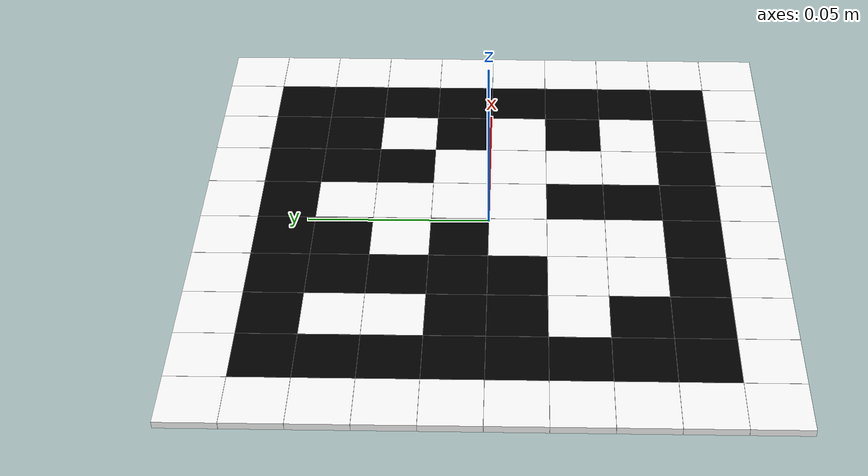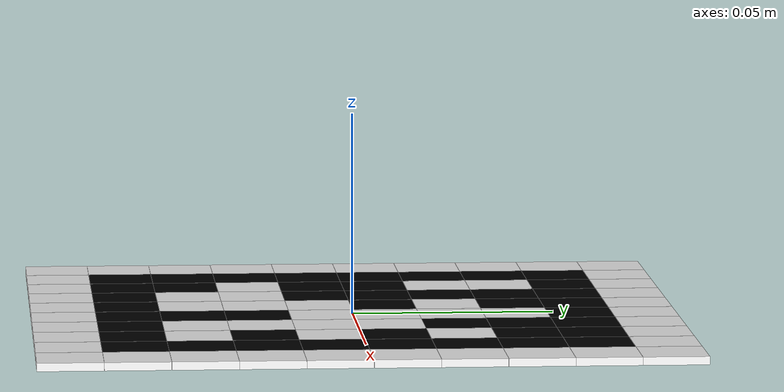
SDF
<?xml version="1.0"?>
<sdf version="1.8">
  <model name="apriltag_36h11_01">
    <static>true</static>
    <link name="link">
      <visual name="c0000">
        <pose>-0.072000 0.072000 0 0 0 0</pose>
        <geometry><box><size>0.015950 0.015950 0.002</size></box></geometry>
        <material>
          <ambient>1 1 1 1</ambient>
          <diffuse>1 1 1 1</diffuse>
          <specular>0 0 0 1</specular>
        </material>
      </visual>
      <visual name="c0001">
        <pose>-0.056000 0.072000 0 0 0 0</pose>
        <geometry><box><size>0.015950 0.015950 0.002</size></box></geometry>
        <material>
          <ambient>1 1 1 1</ambient>
          <diffuse>1 1 1 1</diffuse>
          <specular>0 0 0 1</specular>
        </material>
      </visual>
      <visual name="c0002">
        <pose>-0.040000 0.072000 0 0 0 0</pose>
        <geometry><box><size>0.015950 0.015950 0.002</size></box></geometry>
        <material>
          <ambient>1 1 1 1</ambient>
          <diffuse>1 1 1 1</diffuse>
          <specular>0 0 0 1</specular>
        </material>
      </visual>
      <visual name="c0003">
        <pose>-0.024000 0.072000 0 0 0 0</pose>
        <geometry><box><size>0.015950 0.015950 0.002</size></box></geometry>
        <material>
          <ambient>1 1 1 1</ambient>
          <diffuse>1 1 1 1</diffuse>
          <specular>0 0 0 1</specular>
        </material>
      </visual>
      <visual name="c0004">
        <pose>-0.008000 0.072000 0 0 0 0</pose>
        <geometry><box><size>0.015950 0.015950 0.002</size></box></geometry>
        <material>
          <ambient>1 1 1 1</ambient>
          <diffuse>1 1 1 1</diffuse>
          <specular>0 0 0 1</specular>
        </material>
      </visual>
      <visual name="c0005">
        <pose>0.008000 0.072000 0 0 0 0</pose>
        <geometry><box><size>0.015950 0.015950 0.002</size></box></geometry>
        <material>
          <ambient>1 1 1 1</ambient>
          <diffuse>1 1 1 1</diffuse>
          <specular>0 0 0 1</specular>
        </material>
      </visual>
      <visual name="c0006">
        <pose>0.024000 0.072000 0 0 0 0</pose>
        <geometry><box><size>0.015950 0.015950 0.002</size></box></geometry>
        <material>
          <ambient>1 1 1 1</ambient>
          <diffuse>1 1 1 1</diffuse>
          <specular>0 0 0 1</specular>
        </material>
      </visual>
      <visual name="c0007">
        <pose>0.040000 0.072000 0 0 0 0</pose>
        <geometry><box><size>0.015950 0.015950 0.002</size></box></geometry>
        <material>
          <ambient>1 1 1 1</ambient>
          <diffuse>1 1 1 1</diffuse>
          <specular>0 0 0 1</specular>
        </material>
      </visual>
      <visual name="c0008">
        <pose>0.056000 0.072000 0 0 0 0</pose>
        <geometry><box><size>0.015950 0.015950 0.002</size></box></geometry>
        <material>
          <ambient>1 1 1 1</ambient>
          <diffuse>1 1 1 1</diffuse>
          <specular>0 0 0 1</specular>
        </material>
      </visual>
      <visual name="c0009">
        <pose>0.072000 0.072000 0 0 0 0</pose>
        <geometry><box><size>0.015950 0.015950 0.002</size></box></geometry>
        <material>
          <ambient>1 1 1 1</ambient>
          <diffuse>1 1 1 1</diffuse>
          <specular>0 0 0 1</specular>
        </material>
      </visual>
      <visual name="c0100">
        <pose>-0.072000 0.056000 0 0 0 0</pose>
        <geometry><box><size>0.015950 0.015950 0.002</size></box></geometry>
        <material>
          <ambient>1 1 1 1</ambient>
          <diffuse>1 1 1 1</diffuse>
          <specular>0 0 0 1</specular>
        </material>
      </visual>
      <visual name="c0101">
        <pose>-0.056000 0.056000 0 0 0 0</pose>
        <geometry><box><size>0.015950 0.015950 0.002</size></box></geometry>
        <material>
          <ambient>0 0 0 1</ambient>
          <diffuse>0 0 0 1</diffuse>
          <specular>0 0 0 1</specular>
        </material>
      </visual>
      <visual name="c0102">
        <pose>-0.040000 0.056000 0 0 0 0</pose>
        <geometry><box><size>0.015950 0.015950 0.002</size></box></geometry>
        <material>
          <ambient>0 0 0 1</ambient>
          <diffuse>0 0 0 1</diffuse>
          <specular>0 0 0 1</specular>
        </material>
      </visual>
      <visual name="c0103">
        <pose>-0.024000 0.056000 0 0 0 0</pose>
        <geometry><box><size>0.015950 0.015950 0.002</size></box></geometry>
        <material>
          <ambient>0 0 0 1</ambient>
          <diffuse>0 0 0 1</diffuse>
          <specular>0 0 0 1</specular>
        </material>
      </visual>
      <visual name="c0104">
        <pose>-0.008000 0.056000 0 0 0 0</pose>
        <geometry><box><size>0.015950 0.015950 0.002</size></box></geometry>
        <material>
          <ambient>0 0 0 1</ambient>
          <diffuse>0 0 0 1</diffuse>
          <specular>0 0 0 1</specular>
        </material>
      </visual>
      <visual name="c0105">
        <pose>0.008000 0.056000 0 0 0 0</pose>
        <geometry><box><size>0.015950 0.015950 0.002</size></box></geometry>
        <material>
          <ambient>0 0 0 1</ambient>
          <diffuse>0 0 0 1</diffuse>
          <specular>0 0 0 1</specular>
        </material>
      </visual>
      <visual name="c0106">
        <pose>0.024000 0.056000 0 0 0 0</pose>
        <geometry><box><size>0.015950 0.015950 0.002</size></box></geometry>
        <material>
          <ambient>0 0 0 1</ambient>
          <diffuse>0 0 0 1</diffuse>
          <specular>0 0 0 1</specular>
        </material>
      </visual>
      <visual name="c0107">
        <pose>0.040000 0.056000 0 0 0 0</pose>
        <geometry><box><size>0.015950 0.015950 0.002</size></box></geometry>
        <material>
          <ambient>0 0 0 1</ambient>
          <diffuse>0 0 0 1</diffuse>
          <specular>0 0 0 1</specular>
        </material>
      </visual>
      <visual name="c0108">
        <pose>0.056000 0.056000 0 0 0 0</pose>
        <geometry><box><size>0.015950 0.015950 0.002</size></box></geometry>
        <material>
          <ambient>0 0 0 1</ambient>
          <diffuse>0 0 0 1</diffuse>
          <specular>0 0 0 1</specular>
        </material>
      </visual>
      <visual name="c0109">
        <pose>0.072000 0.056000 0 0 0 0</pose>
        <geometry><box><size>0.015950 0.015950 0.002</size></box></geometry>
        <material>
          <ambient>1 1 1 1</ambient>
          <diffuse>1 1 1 1</diffuse>
          <specular>0 0 0 1</specular>
        </material>
      </visual>
      <visual name="c0200">
        <pose>-0.072000 0.040000 0 0 0 0</pose>
        <geometry><box><size>0.015950 0.015950 0.002</size></box></geometry>
        <material>
          <ambient>1 1 1 1</ambient>
          <diffuse>1 1 1 1</diffuse>
          <specular>0 0 0 1</specular>
        </material>
      </visual>
      <visual name="c0201">
        <pose>-0.056000 0.040000 0 0 0 0</pose>
        <geometry><box><size>0.015950 0.015950 0.002</size></box></geometry>
        <material>
          <ambient>0 0 0 1</ambient>
          <diffuse>0 0 0 1</diffuse>
          <specular>0 0 0 1</specular>
        </material>
      </visual>
      <visual name="c0202">
        <pose>-0.040000 0.040000 0 0 0 0</pose>
        <geometry><box><size>0.015950 0.015950 0.002</size></box></geometry>
        <material>
          <ambient>1 1 1 1</ambient>
          <diffuse>1 1 1 1</diffuse>
          <specular>0 0 0 1</specular>
        </material>
      </visual>
      <visual name="c0203">
        <pose>-0.024000 0.040000 0 0 0 0</pose>
        <geometry><box><size>0.015950 0.015950 0.002</size></box></geometry>
        <material>
          <ambient>0 0 0 1</ambient>
          <diffuse>0 0 0 1</diffuse>
          <specular>0 0 0 1</specular>
        </material>
      </visual>
      <visual name="c0204">
        <pose>-0.008000 0.040000 0 0 0 0</pose>
        <geometry><box><size>0.015950 0.015950 0.002</size></box></geometry>
        <material>
          <ambient>0 0 0 1</ambient>
          <diffuse>0 0 0 1</diffuse>
          <specular>0 0 0 1</specular>
        </material>
      </visual>
      <visual name="c0205">
        <pose>0.008000 0.040000 0 0 0 0</pose>
        <geometry><box><size>0.015950 0.015950 0.002</size></box></geometry>
        <material>
          <ambient>1 1 1 1</ambient>
          <diffuse>1 1 1 1</diffuse>
          <specular>0 0 0 1</specular>
        </material>
      </visual>
      <visual name="c0206">
        <pose>0.024000 0.040000 0 0 0 0</pose>
        <geometry><box><size>0.015950 0.015950 0.002</size></box></geometry>
        <material>
          <ambient>0 0 0 1</ambient>
          <diffuse>0 0 0 1</diffuse>
          <specular>0 0 0 1</specular>
        </material>
      </visual>
      <visual name="c0207">
        <pose>0.040000 0.040000 0 0 0 0</pose>
        <geometry><box><size>0.015950 0.015950 0.002</size></box></geometry>
        <material>
          <ambient>0 0 0 1</ambient>
          <diffuse>0 0 0 1</diffuse>
          <specular>0 0 0 1</specular>
        </material>
      </visual>
      <visual name="c0208">
        <pose>0.056000 0.040000 0 0 0 0</pose>
        <geometry><box><size>0.015950 0.015950 0.002</size></box></geometry>
        <material>
          <ambient>0 0 0 1</ambient>
          <diffuse>0 0 0 1</diffuse>
          <specular>0 0 0 1</specular>
        </material>
      </visual>
      <visual name="c0209">
        <pose>0.072000 0.040000 0 0 0 0</pose>
        <geometry><box><size>0.015950 0.015950 0.002</size></box></geometry>
        <material>
          <ambient>1 1 1 1</ambient>
          <diffuse>1 1 1 1</diffuse>
          <specular>0 0 0 1</specular>
        </material>
      </visual>
      <visual name="c0300">
        <pose>-0.072000 0.024000 0 0 0 0</pose>
        <geometry><box><size>0.015950 0.015950 0.002</size></box></geometry>
        <material>
          <ambient>1 1 1 1</ambient>
          <diffuse>1 1 1 1</diffuse>
          <specular>0 0 0 1</specular>
        </material>
      </visual>
      <visual name="c0301">
        <pose>-0.056000 0.024000 0 0 0 0</pose>
        <geometry><box><size>0.015950 0.015950 0.002</size></box></geometry>
        <material>
          <ambient>0 0 0 1</ambient>
          <diffuse>0 0 0 1</diffuse>
          <specular>0 0 0 1</specular>
        </material>
      </visual>
      <visual name="c0302">
        <pose>-0.040000 0.024000 0 0 0 0</pose>
        <geometry><box><size>0.015950 0.015950 0.002</size></box></geometry>
        <material>
          <ambient>1 1 1 1</ambient>
          <diffuse>1 1 1 1</diffuse>
          <specular>0 0 0 1</specular>
        </material>
      </visual>
      <visual name="c0303">
        <pose>-0.024000 0.024000 0 0 0 0</pose>
        <geometry><box><size>0.015950 0.015950 0.002</size></box></geometry>
        <material>
          <ambient>0 0 0 1</ambient>
          <diffuse>0 0 0 1</diffuse>
          <specular>0 0 0 1</specular>
        </material>
      </visual>
      <visual name="c0304">
        <pose>-0.008000 0.024000 0 0 0 0</pose>
        <geometry><box><size>0.015950 0.015950 0.002</size></box></geometry>
        <material>
          <ambient>1 1 1 1</ambient>
          <diffuse>1 1 1 1</diffuse>
          <specular>0 0 0 1</specular>
        </material>
      </visual>
      <visual name="c0305">
        <pose>0.008000 0.024000 0 0 0 0</pose>
        <geometry><box><size>0.015950 0.015950 0.002</size></box></geometry>
        <material>
          <ambient>1 1 1 1</ambient>
          <diffuse>1 1 1 1</diffuse>
          <specular>0 0 0 1</specular>
        </material>
      </visual>
      <visual name="c0306">
        <pose>0.024000 0.024000 0 0 0 0</pose>
        <geometry><box><size>0.015950 0.015950 0.002</size></box></geometry>
        <material>
          <ambient>0 0 0 1</ambient>
          <diffuse>0 0 0 1</diffuse>
          <specular>0 0 0 1</specular>
        </material>
      </visual>
      <visual name="c0307">
        <pose>0.040000 0.024000 0 0 0 0</pose>
        <geometry><box><size>0.015950 0.015950 0.002</size></box></geometry>
        <material>
          <ambient>1 1 1 1</ambient>
          <diffuse>1 1 1 1</diffuse>
          <specular>0 0 0 1</specular>
        </material>
      </visual>
      <visual name="c0308">
        <pose>0.056000 0.024000 0 0 0 0</pose>
        <geometry><box><size>0.015950 0.015950 0.002</size></box></geometry>
        <material>
          <ambient>0 0 0 1</ambient>
          <diffuse>0 0 0 1</diffuse>
          <specular>0 0 0 1</specular>
        </material>
      </visual>
      <visual name="c0309">
        <pose>0.072000 0.024000 0 0 0 0</pose>
        <geometry><box><size>0.015950 0.015950 0.002</size></box></geometry>
        <material>
          <ambient>1 1 1 1</ambient>
          <diffuse>1 1 1 1</diffuse>
          <specular>0 0 0 1</specular>
        </material>
      </visual>
      <visual name="c0400">
        <pose>-0.072000 0.008000 0 0 0 0</pose>
        <geometry><box><size>0.015950 0.015950 0.002</size></box></geometry>
        <material>
          <ambient>1 1 1 1</ambient>
          <diffuse>1 1 1 1</diffuse>
          <specular>0 0 0 1</specular>
        </material>
      </visual>
      <visual name="c0401">
        <pose>-0.056000 0.008000 0 0 0 0</pose>
        <geometry><box><size>0.015950 0.015950 0.002</size></box></geometry>
        <material>
          <ambient>0 0 0 1</ambient>
          <diffuse>0 0 0 1</diffuse>
          <specular>0 0 0 1</specular>
        </material>
      </visual>
      <visual name="c0402">
        <pose>-0.040000 0.008000 0 0 0 0</pose>
        <geometry><box><size>0.015950 0.015950 0.002</size></box></geometry>
        <material>
          <ambient>0 0 0 1</ambient>
          <diffuse>0 0 0 1</diffuse>
          <specular>0 0 0 1</specular>
        </material>
      </visual>
      <visual name="c0403">
        <pose>-0.024000 0.008000 0 0 0 0</pose>
        <geometry><box><size>0.015950 0.015950 0.002</size></box></geometry>
        <material>
          <ambient>0 0 0 1</ambient>
          <diffuse>0 0 0 1</diffuse>
          <specular>0 0 0 1</specular>
        </material>
      </visual>
      <visual name="c0404">
        <pose>-0.008000 0.008000 0 0 0 0</pose>
        <geometry><box><size>0.015950 0.015950 0.002</size></box></geometry>
        <material>
          <ambient>0 0 0 1</ambient>
          <diffuse>0 0 0 1</diffuse>
          <specular>0 0 0 1</specular>
        </material>
      </visual>
      <visual name="c0405">
        <pose>0.008000 0.008000 0 0 0 0</pose>
        <geometry><box><size>0.015950 0.015950 0.002</size></box></geometry>
        <material>
          <ambient>1 1 1 1</ambient>
          <diffuse>1 1 1 1</diffuse>
          <specular>0 0 0 1</specular>
        </material>
      </visual>
      <visual name="c0406">
        <pose>0.024000 0.008000 0 0 0 0</pose>
        <geometry><box><size>0.015950 0.015950 0.002</size></box></geometry>
        <material>
          <ambient>1 1 1 1</ambient>
          <diffuse>1 1 1 1</diffuse>
          <specular>0 0 0 1</specular>
        </material>
      </visual>
      <visual name="c0407">
        <pose>0.040000 0.008000 0 0 0 0</pose>
        <geometry><box><size>0.015950 0.015950 0.002</size></box></geometry>
        <material>
          <ambient>0 0 0 1</ambient>
          <diffuse>0 0 0 1</diffuse>
          <specular>0 0 0 1</specular>
        </material>
      </visual>
      <visual name="c0408">
        <pose>0.056000 0.008000 0 0 0 0</pose>
        <geometry><box><size>0.015950 0.015950 0.002</size></box></geometry>
        <material>
          <ambient>0 0 0 1</ambient>
          <diffuse>0 0 0 1</diffuse>
          <specular>0 0 0 1</specular>
        </material>
      </visual>
      <visual name="c0409">
        <pose>0.072000 0.008000 0 0 0 0</pose>
        <geometry><box><size>0.015950 0.015950 0.002</size></box></geometry>
        <material>
          <ambient>1 1 1 1</ambient>
          <diffuse>1 1 1 1</diffuse>
          <specular>0 0 0 1</specular>
        </material>
      </visual>
      <visual name="c0500">
        <pose>-0.072000 -0.008000 0 0 0 0</pose>
        <geometry><box><size>0.015950 0.015950 0.002</size></box></geometry>
        <material>
          <ambient>1 1 1 1</ambient>
          <diffuse>1 1 1 1</diffuse>
          <specular>0 0 0 1</specular>
        </material>
      </visual>
      <visual name="c0501">
        <pose>-0.056000 -0.008000 0 0 0 0</pose>
        <geometry><box><size>0.015950 0.015950 0.002</size></box></geometry>
        <material>
          <ambient>0 0 0 1</ambient>
          <diffuse>0 0 0 1</diffuse>
          <specular>0 0 0 1</specular>
        </material>
      </visual>
      <visual name="c0502">
        <pose>-0.040000 -0.008000 0 0 0 0</pose>
        <geometry><box><size>0.015950 0.015950 0.002</size></box></geometry>
        <material>
          <ambient>0 0 0 1</ambient>
          <diffuse>0 0 0 1</diffuse>
          <specular>0 0 0 1</specular>
        </material>
      </visual>
      <visual name="c0503">
        <pose>-0.024000 -0.008000 0 0 0 0</pose>
        <geometry><box><size>0.015950 0.015950 0.002</size></box></geometry>
        <material>
          <ambient>0 0 0 1</ambient>
          <diffuse>0 0 0 1</diffuse>
          <specular>0 0 0 1</specular>
        </material>
      </visual>
      <visual name="c0504">
        <pose>-0.008000 -0.008000 0 0 0 0</pose>
        <geometry><box><size>0.015950 0.015950 0.002</size></box></geometry>
        <material>
          <ambient>1 1 1 1</ambient>
          <diffuse>1 1 1 1</diffuse>
          <specular>0 0 0 1</specular>
        </material>
      </visual>
      <visual name="c0505">
        <pose>0.008000 -0.008000 0 0 0 0</pose>
        <geometry><box><size>0.015950 0.015950 0.002</size></box></geometry>
        <material>
          <ambient>1 1 1 1</ambient>
          <diffuse>1 1 1 1</diffuse>
          <specular>0 0 0 1</specular>
        </material>
      </visual>
      <visual name="c0506">
        <pose>0.024000 -0.008000 0 0 0 0</pose>
        <geometry><box><size>0.015950 0.015950 0.002</size></box></geometry>
        <material>
          <ambient>1 1 1 1</ambient>
          <diffuse>1 1 1 1</diffuse>
          <specular>0 0 0 1</specular>
        </material>
      </visual>
      <visual name="c0507">
        <pose>0.040000 -0.008000 0 0 0 0</pose>
        <geometry><box><size>0.015950 0.015950 0.002</size></box></geometry>
        <material>
          <ambient>1 1 1 1</ambient>
          <diffuse>1 1 1 1</diffuse>
          <specular>0 0 0 1</specular>
        </material>
      </visual>
      <visual name="c0508">
        <pose>0.056000 -0.008000 0 0 0 0</pose>
        <geometry><box><size>0.015950 0.015950 0.002</size></box></geometry>
        <material>
          <ambient>0 0 0 1</ambient>
          <diffuse>0 0 0 1</diffuse>
          <specular>0 0 0 1</specular>
        </material>
      </visual>
      <visual name="c0509">
        <pose>0.072000 -0.008000 0 0 0 0</pose>
        <geometry><box><size>0.015950 0.015950 0.002</size></box></geometry>
        <material>
          <ambient>1 1 1 1</ambient>
          <diffuse>1 1 1 1</diffuse>
          <specular>0 0 0 1</specular>
        </material>
      </visual>
      <visual name="c0600">
        <pose>-0.072000 -0.024000 0 0 0 0</pose>
        <geometry><box><size>0.015950 0.015950 0.002</size></box></geometry>
        <material>
          <ambient>1 1 1 1</ambient>
          <diffuse>1 1 1 1</diffuse>
          <specular>0 0 0 1</specular>
        </material>
      </visual>
      <visual name="c0601">
        <pose>-0.056000 -0.024000 0 0 0 0</pose>
        <geometry><box><size>0.015950 0.015950 0.002</size></box></geometry>
        <material>
          <ambient>0 0 0 1</ambient>
          <diffuse>0 0 0 1</diffuse>
          <specular>0 0 0 1</specular>
        </material>
      </visual>
      <visual name="c0602">
        <pose>-0.040000 -0.024000 0 0 0 0</pose>
        <geometry><box><size>0.015950 0.015950 0.002</size></box></geometry>
        <material>
          <ambient>1 1 1 1</ambient>
          <diffuse>1 1 1 1</diffuse>
          <specular>0 0 0 1</specular>
        </material>
      </visual>
      <visual name="c0603">
        <pose>-0.024000 -0.024000 0 0 0 0</pose>
        <geometry><box><size>0.015950 0.015950 0.002</size></box></geometry>
        <material>
          <ambient>1 1 1 1</ambient>
          <diffuse>1 1 1 1</diffuse>
          <specular>0 0 0 1</specular>
        </material>
      </visual>
      <visual name="c0604">
        <pose>-0.008000 -0.024000 0 0 0 0</pose>
        <geometry><box><size>0.015950 0.015950 0.002</size></box></geometry>
        <material>
          <ambient>1 1 1 1</ambient>
          <diffuse>1 1 1 1</diffuse>
          <specular>0 0 0 1</specular>
        </material>
      </visual>
      <visual name="c0605">
        <pose>0.008000 -0.024000 0 0 0 0</pose>
        <geometry><box><size>0.015950 0.015950 0.002</size></box></geometry>
        <material>
          <ambient>0 0 0 1</ambient>
          <diffuse>0 0 0 1</diffuse>
          <specular>0 0 0 1</specular>
        </material>
      </visual>
      <visual name="c0606">
        <pose>0.024000 -0.024000 0 0 0 0</pose>
        <geometry><box><size>0.015950 0.015950 0.002</size></box></geometry>
        <material>
          <ambient>1 1 1 1</ambient>
          <diffuse>1 1 1 1</diffuse>
          <specular>0 0 0 1</specular>
        </material>
      </visual>
      <visual name="c0607">
        <pose>0.040000 -0.024000 0 0 0 0</pose>
        <geometry><box><size>0.015950 0.015950 0.002</size></box></geometry>
        <material>
          <ambient>0 0 0 1</ambient>
          <diffuse>0 0 0 1</diffuse>
          <specular>0 0 0 1</specular>
        </material>
      </visual>
      <visual name="c0608">
        <pose>0.056000 -0.024000 0 0 0 0</pose>
        <geometry><box><size>0.015950 0.015950 0.002</size></box></geometry>
        <material>
          <ambient>0 0 0 1</ambient>
          <diffuse>0 0 0 1</diffuse>
          <specular>0 0 0 1</specular>
        </material>
      </visual>
      <visual name="c0609">
        <pose>0.072000 -0.024000 0 0 0 0</pose>
        <geometry><box><size>0.015950 0.015950 0.002</size></box></geometry>
        <material>
          <ambient>1 1 1 1</ambient>
          <diffuse>1 1 1 1</diffuse>
          <specular>0 0 0 1</specular>
        </material>
      </visual>
      <visual name="c0700">
        <pose>-0.072000 -0.040000 0 0 0 0</pose>
        <geometry><box><size>0.015950 0.015950 0.002</size></box></geometry>
        <material>
          <ambient>1 1 1 1</ambient>
          <diffuse>1 1 1 1</diffuse>
          <specular>0 0 0 1</specular>
        </material>
      </visual>
      <visual name="c0701">
        <pose>-0.056000 -0.040000 0 0 0 0</pose>
        <geometry><box><size>0.015950 0.015950 0.002</size></box></geometry>
        <material>
          <ambient>0 0 0 1</ambient>
          <diffuse>0 0 0 1</diffuse>
          <specular>0 0 0 1</specular>
        </material>
      </visual>
      <visual name="c0702">
        <pose>-0.040000 -0.040000 0 0 0 0</pose>
        <geometry><box><size>0.015950 0.015950 0.002</size></box></geometry>
        <material>
          <ambient>0 0 0 1</ambient>
          <diffuse>0 0 0 1</diffuse>
          <specular>0 0 0 1</specular>
        </material>
      </visual>
      <visual name="c0703">
        <pose>-0.024000 -0.040000 0 0 0 0</pose>
        <geometry><box><size>0.015950 0.015950 0.002</size></box></geometry>
        <material>
          <ambient>1 1 1 1</ambient>
          <diffuse>1 1 1 1</diffuse>
          <specular>0 0 0 1</specular>
        </material>
      </visual>
      <visual name="c0704">
        <pose>-0.008000 -0.040000 0 0 0 0</pose>
        <geometry><box><size>0.015950 0.015950 0.002</size></box></geometry>
        <material>
          <ambient>1 1 1 1</ambient>
          <diffuse>1 1 1 1</diffuse>
          <specular>0 0 0 1</specular>
        </material>
      </visual>
      <visual name="c0705">
        <pose>0.008000 -0.040000 0 0 0 0</pose>
        <geometry><box><size>0.015950 0.015950 0.002</size></box></geometry>
        <material>
          <ambient>0 0 0 1</ambient>
          <diffuse>0 0 0 1</diffuse>
          <specular>0 0 0 1</specular>
        </material>
      </visual>
      <visual name="c0706">
        <pose>0.024000 -0.040000 0 0 0 0</pose>
        <geometry><box><size>0.015950 0.015950 0.002</size></box></geometry>
        <material>
          <ambient>1 1 1 1</ambient>
          <diffuse>1 1 1 1</diffuse>
          <specular>0 0 0 1</specular>
        </material>
      </visual>
      <visual name="c0707">
        <pose>0.040000 -0.040000 0 0 0 0</pose>
        <geometry><box><size>0.015950 0.015950 0.002</size></box></geometry>
        <material>
          <ambient>1 1 1 1</ambient>
          <diffuse>1 1 1 1</diffuse>
          <specular>0 0 0 1</specular>
        </material>
      </visual>
      <visual name="c0708">
        <pose>0.056000 -0.040000 0 0 0 0</pose>
        <geometry><box><size>0.015950 0.015950 0.002</size></box></geometry>
        <material>
          <ambient>0 0 0 1</ambient>
          <diffuse>0 0 0 1</diffuse>
          <specular>0 0 0 1</specular>
        </material>
      </visual>
      <visual name="c0709">
        <pose>0.072000 -0.040000 0 0 0 0</pose>
        <geometry><box><size>0.015950 0.015950 0.002</size></box></geometry>
        <material>
          <ambient>1 1 1 1</ambient>
          <diffuse>1 1 1 1</diffuse>
          <specular>0 0 0 1</specular>
        </material>
      </visual>
      <visual name="c0800">
        <pose>-0.072000 -0.056000 0 0 0 0</pose>
        <geometry><box><size>0.015950 0.015950 0.002</size></box></geometry>
        <material>
          <ambient>1 1 1 1</ambient>
          <diffuse>1 1 1 1</diffuse>
          <specular>0 0 0 1</specular>
        </material>
      </visual>
      <visual name="c0801">
        <pose>-0.056000 -0.056000 0 0 0 0</pose>
        <geometry><box><size>0.015950 0.015950 0.002</size></box></geometry>
        <material>
          <ambient>0 0 0 1</ambient>
          <diffuse>0 0 0 1</diffuse>
          <specular>0 0 0 1</specular>
        </material>
      </visual>
      <visual name="c0802">
        <pose>-0.040000 -0.056000 0 0 0 0</pose>
        <geometry><box><size>0.015950 0.015950 0.002</size></box></geometry>
        <material>
          <ambient>0 0 0 1</ambient>
          <diffuse>0 0 0 1</diffuse>
          <specular>0 0 0 1</specular>
        </material>
      </visual>
      <visual name="c0803">
        <pose>-0.024000 -0.056000 0 0 0 0</pose>
        <geometry><box><size>0.015950 0.015950 0.002</size></box></geometry>
        <material>
          <ambient>0 0 0 1</ambient>
          <diffuse>0 0 0 1</diffuse>
          <specular>0 0 0 1</specular>
        </material>
      </visual>
      <visual name="c0804">
        <pose>-0.008000 -0.056000 0 0 0 0</pose>
        <geometry><box><size>0.015950 0.015950 0.002</size></box></geometry>
        <material>
          <ambient>0 0 0 1</ambient>
          <diffuse>0 0 0 1</diffuse>
          <specular>0 0 0 1</specular>
        </material>
      </visual>
      <visual name="c0805">
        <pose>0.008000 -0.056000 0 0 0 0</pose>
        <geometry><box><size>0.015950 0.015950 0.002</size></box></geometry>
        <material>
          <ambient>0 0 0 1</ambient>
          <diffuse>0 0 0 1</diffuse>
          <specular>0 0 0 1</specular>
        </material>
      </visual>
      <visual name="c0806">
        <pose>0.024000 -0.056000 0 0 0 0</pose>
        <geometry><box><size>0.015950 0.015950 0.002</size></box></geometry>
        <material>
          <ambient>0 0 0 1</ambient>
          <diffuse>0 0 0 1</diffuse>
          <specular>0 0 0 1</specular>
        </material>
      </visual>
      <visual name="c0807">
        <pose>0.040000 -0.056000 0 0 0 0</pose>
        <geometry><box><size>0.015950 0.015950 0.002</size></box></geometry>
        <material>
          <ambient>0 0 0 1</ambient>
          <diffuse>0 0 0 1</diffuse>
          <specular>0 0 0 1</specular>
        </material>
      </visual>
      <visual name="c0808">
        <pose>0.056000 -0.056000 0 0 0 0</pose>
        <geometry><box><size>0.015950 0.015950 0.002</size></box></geometry>
        <material>
          <ambient>0 0 0 1</ambient>
          <diffuse>0 0 0 1</diffuse>
          <specular>0 0 0 1</specular>
        </material>
      </visual>
      <visual name="c0809">
        <pose>0.072000 -0.056000 0 0 0 0</pose>
        <geometry><box><size>0.015950 0.015950 0.002</size></box></geometry>
        <material>
          <ambient>1 1 1 1</ambient>
          <diffuse>1 1 1 1</diffuse>
          <specular>0 0 0 1</specular>
        </material>
      </visual>
      <visual name="c0900">
        <pose>-0.072000 -0.072000 0 0 0 0</pose>
        <geometry><box><size>0.015950 0.015950 0.002</size></box></geometry>
        <material>
          <ambient>1 1 1 1</ambient>
          <diffuse>1 1 1 1</diffuse>
          <specular>0 0 0 1</specular>
        </material>
      </visual>
      <visual name="c0901">
        <pose>-0.056000 -0.072000 0 0 0 0</pose>
        <geometry><box><size>0.015950 0.015950 0.002</size></box></geometry>
        <material>
          <ambient>1 1 1 1</ambient>
          <diffuse>1 1 1 1</diffuse>
          <specular>0 0 0 1</specular>
        </material>
      </visual>
      <visual name="c0902">
        <pose>-0.040000 -0.072000 0 0 0 0</pose>
        <geometry><box><size>0.015950 0.015950 0.002</size></box></geometry>
        <material>
          <ambient>1 1 1 1</ambient>
          <diffuse>1 1 1 1</diffuse>
          <specular>0 0 0 1</specular>
        </material>
      </visual>
      <visual name="c0903">
        <pose>-0.024000 -0.072000 0 0 0 0</pose>
        <geometry><box><size>0.015950 0.015950 0.002</size></box></geometry>
        <material>
          <ambient>1 1 1 1</ambient>
          <diffuse>1 1 1 1</diffuse>
          <specular>0 0 0 1</specular>
        </material>
      </visual>
      <visual name="c0904">
        <pose>-0.008000 -0.072000 0 0 0 0</pose>
        <geometry><box><size>0.015950 0.015950 0.002</size></box></geometry>
        <material>
          <ambient>1 1 1 1</ambient>
          <diffuse>1 1 1 1</diffuse>
          <specular>0 0 0 1</specular>
        </material>
      </visual>
      <visual name="c0905">
        <pose>0.008000 -0.072000 0 0 0 0</pose>
        <geometry><box><size>0.015950 0.015950 0.002</size></box></geometry>
        <material>
          <ambient>1 1 1 1</ambient>
          <diffuse>1 1 1 1</diffuse>
          <specular>0 0 0 1</specular>
        </material>
      </visual>
      <visual name="c0906">
        <pose>0.024000 -0.072000 0 0 0 0</pose>
        <geometry><box><size>0.015950 0.015950 0.002</size></box></geometry>
        <material>
          <ambient>1 1 1 1</ambient>
          <diffuse>1 1 1 1</diffuse>
          <specular>0 0 0 1</specular>
        </material>
      </visual>
      <visual name="c0907">
        <pose>0.040000 -0.072000 0 0 0 0</pose>
        <geometry><box><size>0.015950 0.015950 0.002</size></box></geometry>
        <material>
          <ambient>1 1 1 1</ambient>
          <diffuse>1 1 1 1</diffuse>
          <specular>0 0 0 1</specular>
        </material>
      </visual>
      <visual name="c0908">
        <pose>0.056000 -0.072000 0 0 0 0</pose>
        <geometry><box><size>0.015950 0.015950 0.002</size></box></geometry>
        <material>
          <ambient>1 1 1 1</ambient>
          <diffuse>1 1 1 1</diffuse>
          <specular>0 0 0 1</specular>
        </material>
      </visual>
      <visual name="c0909">
        <pose>0.072000 -0.072000 0 0 0 0</pose>
        <geometry><box><size>0.015950 0.015950 0.002</size></box></geometry>
        <material>
          <ambient>1 1 1 1</ambient>
          <diffuse>1 1 1 1</diffuse>
          <specular>0 0 0 1</specular>
        </material>
      </visual>
      <collision name="collision">
        <geometry>
          <box><size>0.16 0.16 0.003</size></box>
        </geometry>
      </collision>
    </link>
  </model>
</sdf>
